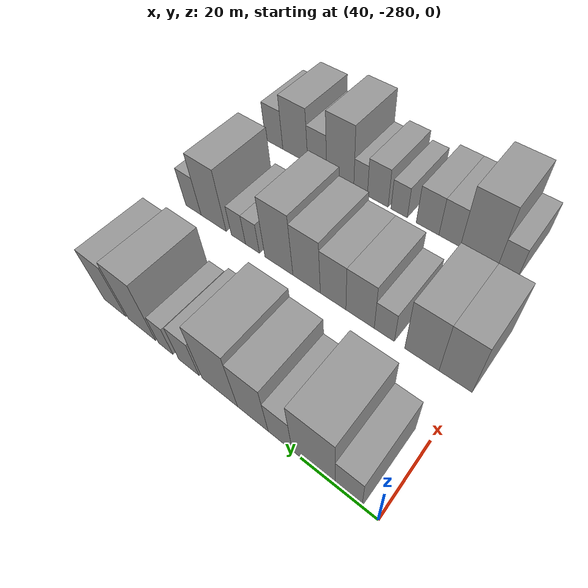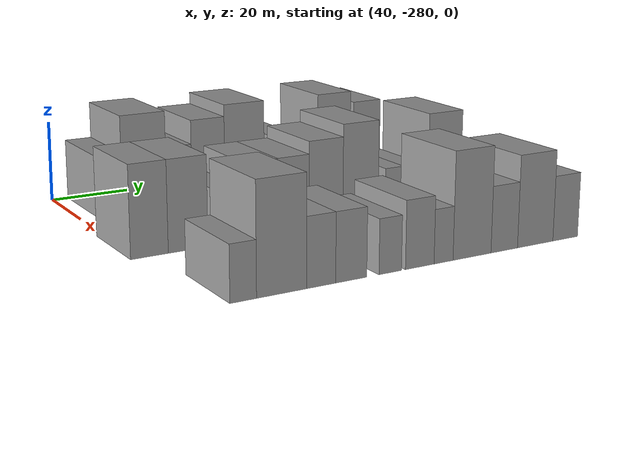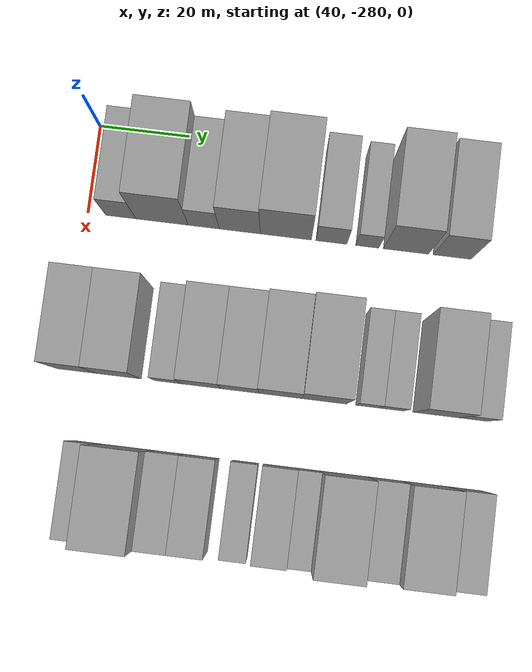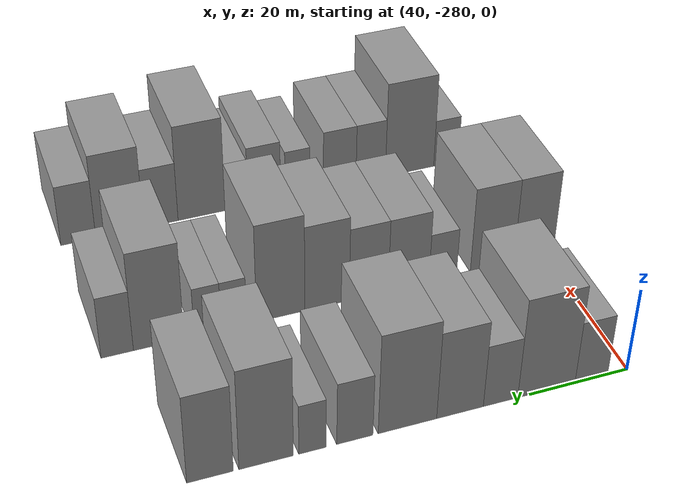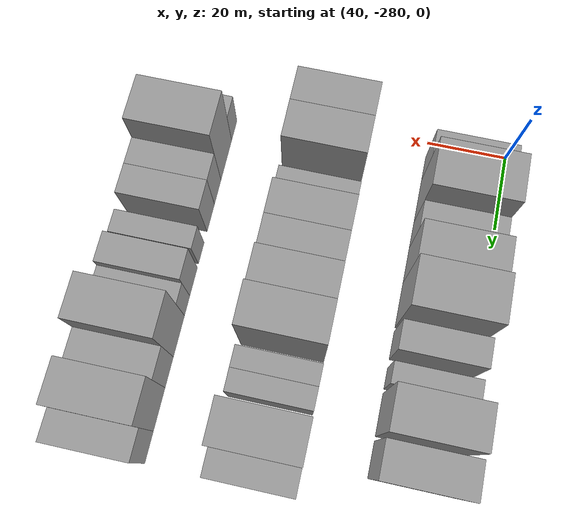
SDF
<sdf version="1.6">
 <world name="default">
  <model name="building_11">
   <static>1</static>
   <pose>50.0000 -272.6070 0 0.000000 0.000000 0.000000</pose>
   <link name="link">
    <pose>0 0 7.50 0 0 0</pose>
    <collision name="collision"><geometry><box><size>20.0000 6.7378 15.0000</size></box></geometry></collision>
    <visual name="visual">
     <cast_shadows>0</cast_shadows>
     <geometry><box><size>20.0000 6.7378 15.0000</size></box></geometry>
     <material>
      <script>
       <uri>model://grey_wall/materials/scripts</uri>
       <uri>model://grey_wall/materials/textures</uri>
       <name>vrc/grey_wall</name>
      </script>
     </material>
    </visual>
   </link>
  </model>
  <model name="building_12">
   <static>1</static>
   <pose>50.0000 -263.4218 0 0.000000 0.000000 0.000000</pose>
   <link name="link">
    <pose>0 0 12.00 0 0 0</pose>
    <collision name="collision"><geometry><box><size>20.0000 11.6326 24.0000</size></box></geometry></collision>
    <visual name="visual">
     <cast_shadows>0</cast_shadows>
     <geometry><box><size>20.0000 11.6326 24.0000</size></box></geometry>
     <material>
      <script>
       <uri>model://grey_wall/materials/scripts</uri>
       <uri>model://grey_wall/materials/textures</uri>
       <name>vrc/grey_wall</name>
      </script>
     </material>
    </visual>
   </link>
  </model>
  <model name="building_13">
   <static>1</static>
   <pose>50.0000 -254.1615 0 0.000000 0.000000 0.000000</pose>
   <link name="link">
    <pose>0 0 7.50 0 0 0</pose>
    <collision name="collision"><geometry><box><size>20.0000 6.8879 15.0000</size></box></geometry></collision>
    <visual name="visual">
     <cast_shadows>0</cast_shadows>
     <geometry><box><size>20.0000 6.8879 15.0000</size></box></geometry>
     <material>
      <script>
       <uri>model://grey_wall/materials/scripts</uri>
       <uri>model://grey_wall/materials/textures</uri>
       <name>vrc/grey_wall</name>
      </script>
     </material>
    </visual>
   </link>
  </model>
  <model name="building_14">
   <static>1</static>
   <pose>50.0000 -246.1283 0 0.000000 0.000000 0.000000</pose>
   <link name="link">
    <pose>0 0 10.50 0 0 0</pose>
    <collision name="collision"><geometry><box><size>20.0000 9.1787 21.0000</size></box></geometry></collision>
    <visual name="visual">
     <cast_shadows>0</cast_shadows>
     <geometry><box><size>20.0000 9.1787 21.0000</size></box></geometry>
     <material>
      <script>
       <uri>model://grey_wall/materials/scripts</uri>
       <uri>model://grey_wall/materials/textures</uri>
       <name>vrc/grey_wall</name>
      </script>
     </material>
    </visual>
   </link>
  </model>
  <model name="building_15">
   <static>1</static>
   <pose>50.0000 -235.8832 0 0.000000 0.000000 0.000000</pose>
   <link name="link">
    <pose>0 0 12.00 0 0 0</pose>
    <collision name="collision"><geometry><box><size>20.0000 11.3115 24.0000</size></box></geometry></collision>
    <visual name="visual">
     <cast_shadows>0</cast_shadows>
     <geometry><box><size>20.0000 11.3115 24.0000</size></box></geometry>
     <material>
      <script>
       <uri>model://grey_wall/materials/scripts</uri>
       <uri>model://grey_wall/materials/textures</uri>
       <name>vrc/grey_wall</name>
      </script>
     </material>
    </visual>
   </link>
  </model>
  <model name="building_16">
   <static>1</static>
   <pose>50.0000 -225.7912 0 0.000000 0.000000 0.000000</pose>
   <link name="link">
    <pose>0 0 7.50 0 0 0</pose>
    <collision name="collision"><geometry><box><size>20.0000 6.8725 15.0000</size></box></geometry></collision>
    <visual name="visual">
     <cast_shadows>0</cast_shadows>
     <geometry><box><size>20.0000 6.8725 15.0000</size></box></geometry>
     <material>
      <script>
       <uri>model://grey_wall/materials/scripts</uri>
       <uri>model://grey_wall/materials/textures</uri>
       <name>vrc/grey_wall</name>
      </script>
     </material>
    </visual>
   </link>
  </model>
  <model name="building_17">
   <static>1</static>
   <pose>50.0000 -217.7976 0 0.000000 0.000000 0.000000</pose>
   <link name="link">
    <pose>0 0 6.00 0 0 0</pose>
    <collision name="collision"><geometry><box><size>20.0000 5.1148 12.0000</size></box></geometry></collision>
    <visual name="visual">
     <cast_shadows>0</cast_shadows>
     <geometry><box><size>20.0000 5.1148 12.0000</size></box></geometry>
     <material>
      <script>
       <uri>model://grey_wall/materials/scripts</uri>
       <uri>model://grey_wall/materials/textures</uri>
       <name>vrc/grey_wall</name>
      </script>
     </material>
    </visual>
   </link>
  </model>
  <model name="building_18">
   <static>1</static>
   <pose>50.0000 -209.2322 0 0.000000 0.000000 0.000000</pose>
   <link name="link">
    <pose>0 0 12.00 0 0 0</pose>
    <collision name="collision"><geometry><box><size>20.0000 10.0159 24.0000</size></box></geometry></collision>
    <visual name="visual">
     <cast_shadows>0</cast_shadows>
     <geometry><box><size>20.0000 10.0159 24.0000</size></box></geometry>
     <material>
      <script>
       <uri>model://grey_wall/materials/scripts</uri>
       <uri>model://grey_wall/materials/textures</uri>
       <name>vrc/grey_wall</name>
      </script>
     </material>
    </visual>
   </link>
  </model>
  <model name="building_19">
   <static>1</static>
   <pose>50.0000 -199.0044 0 0.000000 0.000000 0.000000</pose>
   <link name="link">
    <pose>0 0 10.50 0 0 0</pose>
    <collision name="collision"><geometry><box><size>20.0000 8.4398 21.0000</size></box></geometry></collision>
    <visual name="visual">
     <cast_shadows>0</cast_shadows>
     <geometry><box><size>20.0000 8.4398 21.0000</size></box></geometry>
     <material>
      <script>
       <uri>model://grey_wall/materials/scripts</uri>
       <uri>model://grey_wall/materials/textures</uri>
       <name>vrc/grey_wall</name>
      </script>
     </material>
    </visual>
   </link>
  </model>
  <model name="building_92">
   <static>1</static>
   <pose>85.0000 -277.3426 0 0.000000 0.000000 0.000000</pose>
   <link name="link">
    <pose>0 0 10.50 0 0 0</pose>
    <collision name="collision"><geometry><box><size>20.0000 8.8077 21.0000</size></box></geometry></collision>
    <visual name="visual">
     <cast_shadows>0</cast_shadows>
     <geometry><box><size>20.0000 8.8077 21.0000</size></box></geometry>
     <material>
      <script>
       <uri>model://grey_wall/materials/scripts</uri>
       <uri>model://grey_wall/materials/textures</uri>
       <name>vrc/grey_wall</name>
      </script>
     </material>
    </visual>
   </link>
  </model>
  <model name="building_93">
   <static>1</static>
   <pose>85.0000 -268.1511 0 0.000000 0.000000 0.000000</pose>
   <link name="link">
    <pose>0 0 10.50 0 0 0</pose>
    <collision name="collision"><geometry><box><size>20.0000 9.5753 21.0000</size></box></geometry></collision>
    <visual name="visual">
     <cast_shadows>0</cast_shadows>
     <geometry><box><size>20.0000 9.5753 21.0000</size></box></geometry>
     <material>
      <script>
       <uri>model://grey_wall/materials/scripts</uri>
       <uri>model://grey_wall/materials/textures</uri>
       <name>vrc/grey_wall</name>
      </script>
     </material>
    </visual>
   </link>
  </model>
  <model name="building_94">
   <static>1</static>
   <pose>85.0000 -257.3862 0 0.000000 0.000000 0.000000</pose>
   <link name="link">
    <pose>0 0 6.00 0 0 0</pose>
    <collision name="collision"><geometry><box><size>20.0000 5.9543 12.0000</size></box></geometry></collision>
    <visual name="visual">
     <cast_shadows>0</cast_shadows>
     <geometry><box><size>20.0000 5.9543 12.0000</size></box></geometry>
     <material>
      <script>
       <uri>model://grey_wall/materials/scripts</uri>
       <uri>model://grey_wall/materials/textures</uri>
       <name>vrc/grey_wall</name>
      </script>
     </material>
    </visual>
   </link>
  </model>
  <model name="building_95">
   <static>1</static>
   <pose>85.0000 -250.0476 0 0.000000 0.000000 0.000000</pose>
   <link name="link">
    <pose>0 0 9.00 0 0 0</pose>
    <collision name="collision"><geometry><box><size>20.0000 8.7229 18.0000</size></box></geometry></collision>
    <visual name="visual">
     <cast_shadows>0</cast_shadows>
     <geometry><box><size>20.0000 8.7229 18.0000</size></box></geometry>
     <material>
      <script>
       <uri>model://grey_wall/materials/scripts</uri>
       <uri>model://grey_wall/materials/textures</uri>
       <name>vrc/grey_wall</name>
      </script>
     </material>
    </visual>
   </link>
  </model>
  <model name="building_96">
   <static>1</static>
   <pose>85.0000 -241.5769 0 0.000000 0.000000 0.000000</pose>
   <link name="link">
    <pose>0 0 9.00 0 0 0</pose>
    <collision name="collision"><geometry><box><size>20.0000 8.2185 18.0000</size></box></geometry></collision>
    <visual name="visual">
     <cast_shadows>0</cast_shadows>
     <geometry><box><size>20.0000 8.2185 18.0000</size></box></geometry>
     <material>
      <script>
       <uri>model://grey_wall/materials/scripts</uri>
       <uri>model://grey_wall/materials/textures</uri>
       <name>vrc/grey_wall</name>
      </script>
     </material>
    </visual>
   </link>
  </model>
  <model name="building_97">
   <static>1</static>
   <pose>85.0000 -232.8601 0 0.000000 0.000000 0.000000</pose>
   <link name="link">
    <pose>0 0 10.50 0 0 0</pose>
    <collision name="collision"><geometry><box><size>20.0000 9.2152 21.0000</size></box></geometry></collision>
    <visual name="visual">
     <cast_shadows>0</cast_shadows>
     <geometry><box><size>20.0000 9.2152 21.0000</size></box></geometry>
     <material>
      <script>
       <uri>model://grey_wall/materials/scripts</uri>
       <uri>model://grey_wall/materials/textures</uri>
       <name>vrc/grey_wall</name>
      </script>
     </material>
    </visual>
   </link>
  </model>
  <model name="building_98">
   <static>1</static>
   <pose>85.0000 -223.3158 0 0.000000 0.000000 0.000000</pose>
   <link name="link">
    <pose>0 0 12.00 0 0 0</pose>
    <collision name="collision"><geometry><box><size>20.0000 9.8735 24.0000</size></box></geometry></collision>
    <visual name="visual">
     <cast_shadows>0</cast_shadows>
     <geometry><box><size>20.0000 9.8735 24.0000</size></box></geometry>
     <material>
      <script>
       <uri>model://grey_wall/materials/scripts</uri>
       <uri>model://grey_wall/materials/textures</uri>
       <name>vrc/grey_wall</name>
      </script>
     </material>
    </visual>
   </link>
  </model>
  <model name="building_99">
   <static>1</static>
   <pose>85.0000 -213.8111 0 0.000000 0.000000 0.000000</pose>
   <link name="link">
    <pose>0 0 6.00 0 0 0</pose>
    <collision name="collision"><geometry><box><size>20.0000 5.1359 12.0000</size></box></geometry></collision>
    <visual name="visual">
     <cast_shadows>0</cast_shadows>
     <geometry><box><size>20.0000 5.1359 12.0000</size></box></geometry>
     <material>
      <script>
       <uri>model://grey_wall/materials/scripts</uri>
       <uri>model://grey_wall/materials/textures</uri>
       <name>vrc/grey_wall</name>
      </script>
     </material>
    </visual>
   </link>
  </model>
  <model name="building_100">
   <static>1</static>
   <pose>85.0000 -208.5606 0 0.000000 0.000000 0.000000</pose>
   <link name="link">
    <pose>0 0 6.00 0 0 0</pose>
    <collision name="collision"><geometry><box><size>20.0000 5.3651 12.0000</size></box></geometry></collision>
    <visual name="visual">
     <cast_shadows>0</cast_shadows>
     <geometry><box><size>20.0000 5.3651 12.0000</size></box></geometry>
     <material>
      <script>
       <uri>model://grey_wall/materials/scripts</uri>
       <uri>model://grey_wall/materials/textures</uri>
       <name>vrc/grey_wall</name>
      </script>
     </material>
    </visual>
   </link>
  </model>
  <model name="building_101">
   <static>1</static>
   <pose>85.0000 -198.9123 0 0.000000 0.000000 0.000000</pose>
   <link name="link">
    <pose>0 0 12.00 0 0 0</pose>
    <collision name="collision"><geometry><box><size>20.0000 9.9314 24.0000</size></box></geometry></collision>
    <visual name="visual">
     <cast_shadows>0</cast_shadows>
     <geometry><box><size>20.0000 9.9314 24.0000</size></box></geometry>
     <material>
      <script>
       <uri>model://grey_wall/materials/scripts</uri>
       <uri>model://grey_wall/materials/textures</uri>
       <name>vrc/grey_wall</name>
      </script>
     </material>
    </visual>
   </link>
  </model>
  <model name="building_102">
   <static>1</static>
   <pose>85.0000 -190.8094 0 0.000000 0.000000 0.000000</pose>
   <link name="link">
    <pose>0 0 7.50 0 0 0</pose>
    <collision name="collision"><geometry><box><size>20.0000 6.2743 15.0000</size></box></geometry></collision>
    <visual name="visual">
     <cast_shadows>0</cast_shadows>
     <geometry><box><size>20.0000 6.2743 15.0000</size></box></geometry>
     <material>
      <script>
       <uri>model://grey_wall/materials/scripts</uri>
       <uri>model://grey_wall/materials/textures</uri>
       <name>vrc/grey_wall</name>
      </script>
     </material>
    </visual>
   </link>
  </model>
  <model name="building_178">
   <static>1</static>
   <pose>120.0000 -272.8156 0 0.000000 0.000000 0.000000</pose>
   <link name="link">
    <pose>0 0 6.00 0 0 0</pose>
    <collision name="collision"><geometry><box><size>20.0000 5.8294 12.0000</size></box></geometry></collision>
    <visual name="visual">
     <cast_shadows>0</cast_shadows>
     <geometry><box><size>20.0000 5.8294 12.0000</size></box></geometry>
     <material>
      <script>
       <uri>model://grey_wall/materials/scripts</uri>
       <uri>model://grey_wall/materials/textures</uri>
       <name>vrc/grey_wall</name>
      </script>
     </material>
    </visual>
   </link>
  </model>
  <model name="building_179">
   <static>1</static>
   <pose>120.0000 -264.2283 0 0.000000 0.000000 0.000000</pose>
   <link name="link">
    <pose>0 0 12.00 0 0 0</pose>
    <collision name="collision"><geometry><box><size>20.0000 11.3452 24.0000</size></box></geometry></collision>
    <visual name="visual">
     <cast_shadows>0</cast_shadows>
     <geometry><box><size>20.0000 11.3452 24.0000</size></box></geometry>
     <material>
      <script>
       <uri>model://grey_wall/materials/scripts</uri>
       <uri>model://grey_wall/materials/textures</uri>
       <name>vrc/grey_wall</name>
      </script>
     </material>
    </visual>
   </link>
  </model>
  <model name="building_180">
   <static>1</static>
   <pose>120.0000 -255.1642 0 0.000000 0.000000 0.000000</pose>
   <link name="link">
    <pose>0 0 7.50 0 0 0</pose>
    <collision name="collision"><geometry><box><size>20.0000 6.7829 15.0000</size></box></geometry></collision>
    <visual name="visual">
     <cast_shadows>0</cast_shadows>
     <geometry><box><size>20.0000 6.7829 15.0000</size></box></geometry>
     <material>
      <script>
       <uri>model://grey_wall/materials/scripts</uri>
       <uri>model://grey_wall/materials/textures</uri>
       <name>vrc/grey_wall</name>
      </script>
     </material>
    </visual>
   </link>
  </model>
  <model name="building_181">
   <static>1</static>
   <pose>120.0000 -248.0360 0 0.000000 0.000000 0.000000</pose>
   <link name="link">
    <pose>0 0 7.50 0 0 0</pose>
    <collision name="collision"><geometry><box><size>20.0000 7.4734 15.0000</size></box></geometry></collision>
    <visual name="visual">
     <cast_shadows>0</cast_shadows>
     <geometry><box><size>20.0000 7.4734 15.0000</size></box></geometry>
     <material>
      <script>
       <uri>model://grey_wall/materials/scripts</uri>
       <uri>model://grey_wall/materials/textures</uri>
       <name>vrc/grey_wall</name>
      </script>
     </material>
    </visual>
   </link>
  </model>
  <model name="building_182">
   <static>1</static>
   <pose>120.0000 -238.4927 0 0.000000 0.000000 0.000000</pose>
   <link name="link">
    <pose>0 0 6.00 0 0 0</pose>
    <collision name="collision"><geometry><box><size>20.0000 5.6132 12.0000</size></box></geometry></collision>
    <visual name="visual">
     <cast_shadows>0</cast_shadows>
     <geometry><box><size>20.0000 5.6132 12.0000</size></box></geometry>
     <material>
      <script>
       <uri>model://grey_wall/materials/scripts</uri>
       <uri>model://grey_wall/materials/textures</uri>
       <name>vrc/grey_wall</name>
      </script>
     </material>
    </visual>
   </link>
  </model>
  <model name="building_183">
   <static>1</static>
   <pose>120.0000 -231.0179 0 0.000000 0.000000 0.000000</pose>
   <link name="link">
    <pose>0 0 7.50 0 0 0</pose>
    <collision name="collision"><geometry><box><size>20.0000 7.3363 15.0000</size></box></geometry></collision>
    <visual name="visual">
     <cast_shadows>0</cast_shadows>
     <geometry><box><size>20.0000 7.3363 15.0000</size></box></geometry>
     <material>
      <script>
       <uri>model://grey_wall/materials/scripts</uri>
       <uri>model://grey_wall/materials/textures</uri>
       <name>vrc/grey_wall</name>
      </script>
     </material>
    </visual>
   </link>
  </model>
  <model name="building_184">
   <static>1</static>
   <pose>120.0000 -224.8558 0 0.000000 0.000000 0.000000</pose>
   <link name="link">
    <pose>0 0 6.00 0 0 0</pose>
    <collision name="collision"><geometry><box><size>20.0000 4.9879 12.0000</size></box></geometry></collision>
    <visual name="visual">
     <cast_shadows>0</cast_shadows>
     <geometry><box><size>20.0000 4.9879 12.0000</size></box></geometry>
     <material>
      <script>
       <uri>model://grey_wall/materials/scripts</uri>
       <uri>model://grey_wall/materials/textures</uri>
       <name>vrc/grey_wall</name>
      </script>
     </material>
    </visual>
   </link>
  </model>
  <model name="building_185">
   <static>1</static>
   <pose>120.0000 -217.2404 0 0.000000 0.000000 0.000000</pose>
   <link name="link">
    <pose>0 0 12.00 0 0 0</pose>
    <collision name="collision"><geometry><box><size>20.0000 10.2428 24.0000</size></box></geometry></collision>
    <visual name="visual">
     <cast_shadows>0</cast_shadows>
     <geometry><box><size>20.0000 10.2428 24.0000</size></box></geometry>
     <material>
      <script>
       <uri>model://grey_wall/materials/scripts</uri>
       <uri>model://grey_wall/materials/textures</uri>
       <name>vrc/grey_wall</name>
      </script>
     </material>
    </visual>
   </link>
  </model>
  <model name="building_186">
   <static>1</static>
   <pose>120.0000 -208.4225 0 0.000000 0.000000 0.000000</pose>
   <link name="link">
    <pose>0 0 7.50 0 0 0</pose>
    <collision name="collision"><geometry><box><size>20.0000 7.3930 15.0000</size></box></geometry></collision>
    <visual name="visual">
     <cast_shadows>0</cast_shadows>
     <geometry><box><size>20.0000 7.3930 15.0000</size></box></geometry>
     <material>
      <script>
       <uri>model://grey_wall/materials/scripts</uri>
       <uri>model://grey_wall/materials/textures</uri>
       <name>vrc/grey_wall</name>
      </script>
     </material>
    </visual>
   </link>
  </model>
  <model name="building_187">
   <static>1</static>
   <pose>120.0000 -199.6432 0 0.000000 0.000000 0.000000</pose>
   <link name="link">
    <pose>0 0 10.50 0 0 0</pose>
    <collision name="collision"><geometry><box><size>20.0000 10.1655 21.0000</size></box></geometry></collision>
    <visual name="visual">
     <cast_shadows>0</cast_shadows>
     <geometry><box><size>20.0000 10.1655 21.0000</size></box></geometry>
     <material>
      <script>
       <uri>model://grey_wall/materials/scripts</uri>
       <uri>model://grey_wall/materials/textures</uri>
       <name>vrc/grey_wall</name>
      </script>
     </material>
    </visual>
   </link>
  </model>
  <model name="building_188">
   <static>1</static>
   <pose>120.0000 -190.9101 0 0.000000 0.000000 0.000000</pose>
   <link name="link">
    <pose>0 0 7.50 0 0 0</pose>
    <collision name="collision"><geometry><box><size>20.0000 7.3007 15.0000</size></box></geometry></collision>
    <visual name="visual">
     <cast_shadows>0</cast_shadows>
     <geometry><box><size>20.0000 7.3007 15.0000</size></box></geometry>
     <material>
      <script>
       <uri>model://grey_wall/materials/scripts</uri>
       <uri>model://grey_wall/materials/textures</uri>
       <name>vrc/grey_wall</name>
      </script>
     </material>
    </visual>
   </link>
  </model>
 </world>
</sdf>
